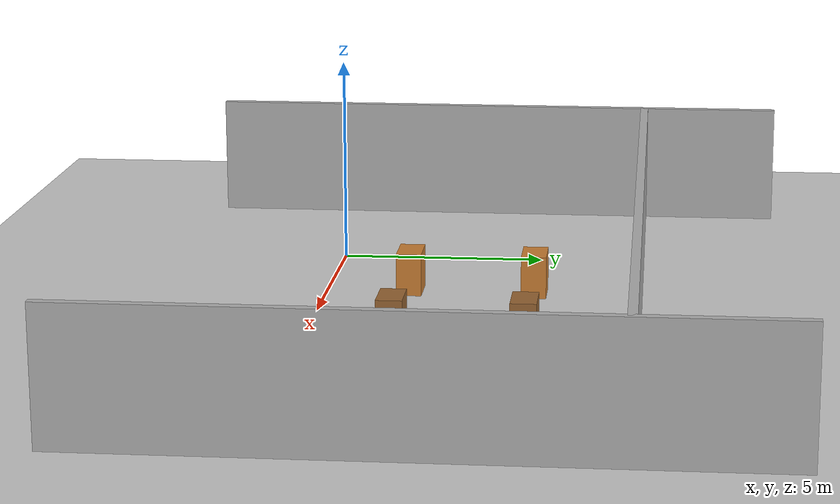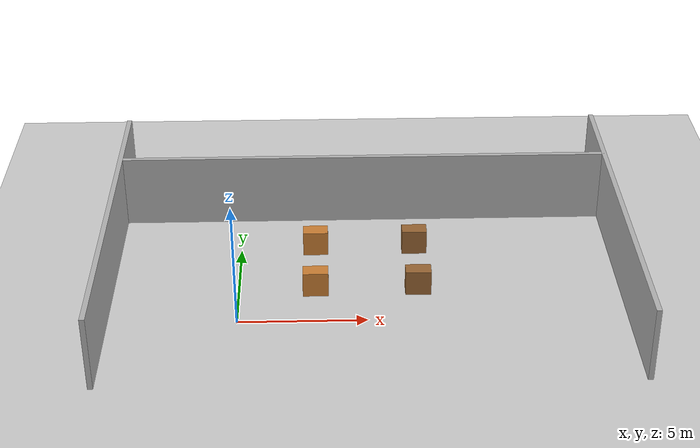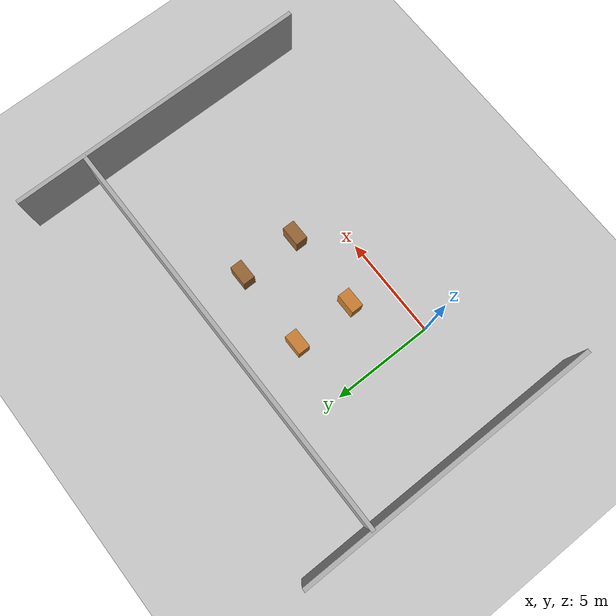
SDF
<?xml version="1.0" ?>
<sdf version="1.6">
  <world name="warehouse">

    <!-- Физика -->
    <physics name="default_physics" default="true" type="ode">
      <max_step_size>0.004</max_step_size>
      <real_time_factor>1.0</real_time_factor>
      <real_time_update_rate>250</real_time_update_rate>
    </physics>

    <!-- Сцена -->
    <scene>
      <ambient>0.4 0.4 0.4 1.0</ambient>
      <background>0.7 0.7 0.7 1.0</background>
      <shadows>true</shadows>
    </scene>

    <!-- Освещение -->
    <include>
      <uri>model://sun</uri>
    </include>

    <!-- Пол -->
    <include>
      <uri>model://ground_plane</uri>
    </include>

    <!-- Шкаф 1 (левый ряд, передний) -->
    <model name="cabinet_1">
      <static>true</static>
      <pose>3 2 0 0 0 0</pose>
      <link name="link">
        <collision name="collision">
          <geometry>
            <box>
              <size>1.0 0.6 2.0</size>
            </box>
          </geometry>
        </collision>
        <visual name="visual">
          <geometry>
            <box>
              <size>1.0 0.6 2.0</size>
            </box>
          </geometry>
          <material>
            <ambient>0.8 0.5 0.2 1</ambient>
            <diffuse>0.8 0.5 0.2 1</diffuse>
          </material>
        </visual>
      </link>
    </model>

    <!-- Шкаф 2 (левый ряд, задний) -->
    <model name="cabinet_2">
      <static>true</static>
      <pose>3 5 0 0 0 0</pose>
      <link name="link">
        <collision name="collision">
          <geometry>
            <box>
              <size>1.0 0.6 2.0</size>
            </box>
          </geometry>
        </collision>
        <visual name="visual">
          <geometry>
            <box>
              <size>1.0 0.6 2.0</size>
            </box>
          </geometry>
          <material>
            <ambient>0.8 0.5 0.2 1</ambient>
            <diffuse>0.8 0.5 0.2 1</diffuse>
          </material>
        </visual>
      </link>
    </model>

    <!-- Шкаф 3 (центральный ряд, передний) -->
    <model name="cabinet_3">
      <static>true</static>
      <pose>7 2 0 0 0 0</pose>
      <link name="link">
        <collision name="collision">
          <geometry>
            <box>
              <size>1.0 0.6 2.0</size>
            </box>
          </geometry>
        </collision>
        <visual name="visual">
          <geometry>
            <box>
              <size>1.0 0.6 2.0</size>
            </box>
          </geometry>
          <material>
            <ambient>0.6 0.4 0.2 1</ambient>
            <diffuse>0.6 0.4 0.2 1</diffuse>
          </material>
        </visual>
      </link>
    </model>

    <!-- Шкаф 4 (центральный ряд, задний) -->
    <model name="cabinet_4">
      <static>true</static>
      <pose>7 5 0 0 0 0</pose>
      <link name="link">
        <collision name="collision">
          <geometry>
            <box>
              <size>1.0 0.6 2.0</size>
            </box>
          </geometry>
        </collision>
        <visual name="visual">
          <geometry>
            <box>
              <size>1.0 0.6 2.0</size>
            </box>
          </geometry>
          <material>
            <ambient>0.6 0.4 0.2 1</ambient>
            <diffuse>0.6 0.4 0.2 1</diffuse>
          </material>
        </visual>
      </link>
    </model>

    <!-- Стены склада -->
    <!-- Задняя стена -->
    <model name="back_wall">
      <static>true</static>
      <pose>5 7.5 1.5 0 0 0</pose>
      <link name="link">
        <collision name="collision">
          <geometry>
            <box>
              <size>20 0.2 3</size>
            </box>
          </geometry>
        </collision>
        <visual name="visual">
          <geometry>
            <box>
              <size>20 0.2 3</size>
            </box>
          </geometry>
          <material>
            <ambient>0.7 0.7 0.7 1</ambient>
            <diffuse>0.7 0.7 0.7 1</diffuse>
          </material>
        </visual>
      </link>
    </model>

    <!-- Левая стена -->
    <model name="left_wall">
      <static>true</static>
      <pose>-5 3.5 1.5 0 0 0</pose>
      <link name="link">
        <collision name="collision">
          <geometry>
            <box>
              <size>0.2 15 3</size>
            </box>
          </geometry>
        </collision>
        <visual name="visual">
          <geometry>
            <box>
              <size>0.2 15 3</size>
            </box>
          </geometry>
          <material>
            <ambient>0.7 0.7 0.7 1</ambient>
            <diffuse>0.7 0.7 0.7 1</diffuse>
          </material>
        </visual>
      </link>
    </model>

    <!-- Правая стена -->
    <model name="right_wall">
      <static>true</static>
      <pose>15 3.5 1.5 0 0 0</pose>
      <link name="link">
        <collision name="collision">
          <geometry>
            <box>
              <size>0.2 15 3</size>
            </box>
          </geometry>
        </collision>
        <visual name="visual">
          <geometry>
            <box>
              <size>0.2 15 3</size>
            </box>
          </geometry>
          <material>
            <ambient>0.7 0.7 0.7 1</ambient>
            <diffuse>0.7 0.7 0.7 1</diffuse>
          </material>
        </visual>
      </link>
    </model>

  </world>
</sdf>
